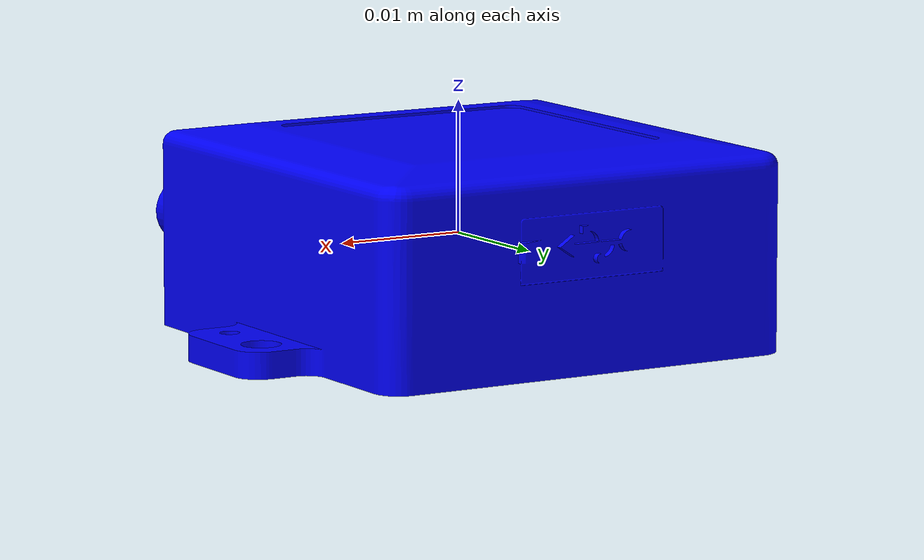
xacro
<?xml version="1.0"?>
<robot xmlns:xacro="http://www.ros.org/wiki/xacro">

    <link name="imu_link">
        <visual>
            <origin xyz="0.0165 0.004 -0.0365" rpy="0 0 0" />
            <geometry>
                <mesh filename="package://prototype_vehicle/mesh/Single/IMU.STL" scale="0.001 0.001 0.001" />
            </geometry>
            <material name="Blue">
                <color rgba="0 0 1 1" />
            </material>
        </visual>
        <collision>
            <origin xyz="0.0165 0.004 -0.0365" rpy="0 0 0" />
            <geometry>
                <mesh filename="package://prototype_vehicle/mesh/Single/IMU.STL" scale="0.001 0.001 0.001" />
            </geometry>
        </collision>
        <inertial>
            <origin xyz="0 0 0" rpy="0 0 0" />
            <mass value="0" />
            <inertia ixx="0.0" ixy="0.0" ixz="0.0" iyx="0.0" iyy="0.0" iyz="0.0" izx="0.0" izy="0.0" izz="0.0" />
        </inertial>
    </link>

    <gazebo reference="imu_link">
        <material>Gazebo/Blue</material>
        <mu1 value="0.01" />
        <mu2 value="0.01" />
        <kp value="10000000.0" />
        <kd value="1.0" />
        <minDepth>0.01</minDepth>
    </gazebo>

    <gazebo reference="imu_link">
        <gravity>true</gravity>
        <sensor name="imu_sensor" type="imu">
            <always_on>true</always_on>
            <update_rate>50</update_rate>
            <visualize>false</visualize>
            <topic>imu</topic>
            <plugin filename="libgazebo_ros_imu_sensor.so" name="imu_plugin">
                <topicName>imu</topicName>
                <bodyName>imu_link</bodyName>
                <updateRateHZ>50.0</updateRateHZ>
                <gaussianNoise>0.0</gaussianNoise>
                <xyzOffset>0 0 0</xyzOffset>
                <rpyOffset>0 0 0</rpyOffset>
                <frameName>imu_link</frameName>
                <initialOrientationAsReference>false</initialOrientationAsReference>
            </plugin>
            <pose>0 0 0 0 0 0</pose>
        </sensor>
    </gazebo>

</robot>
